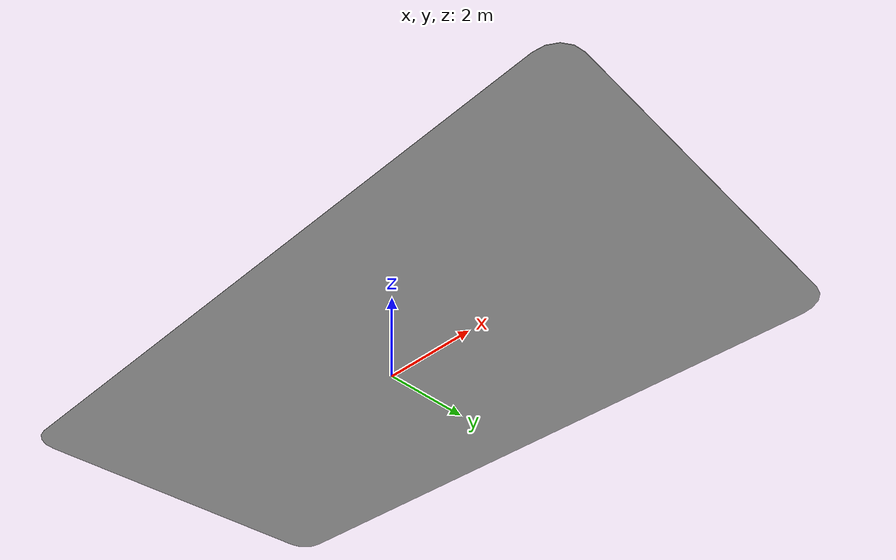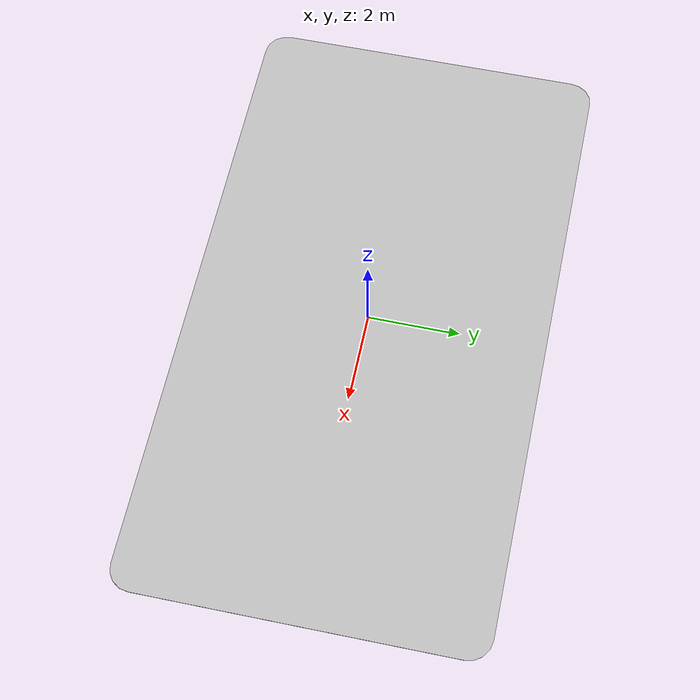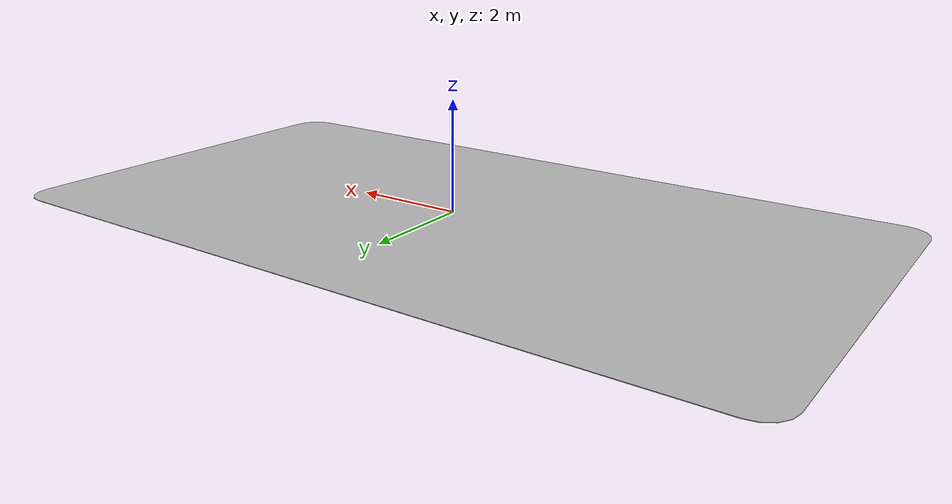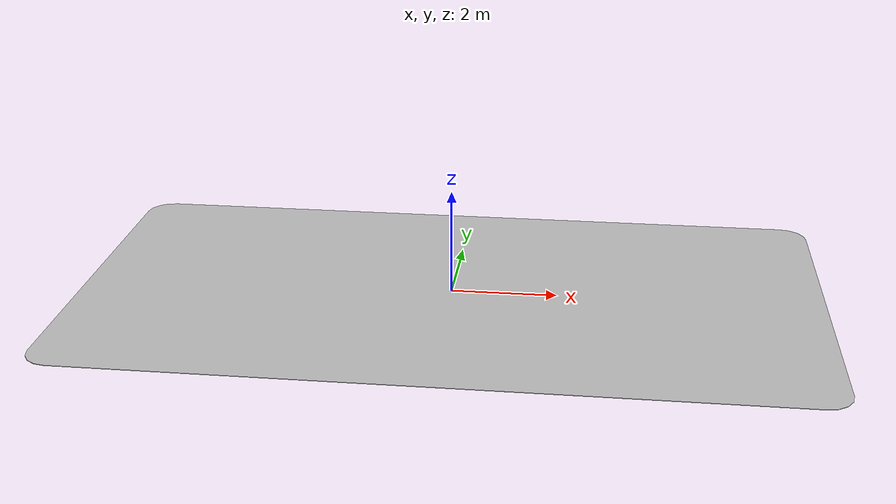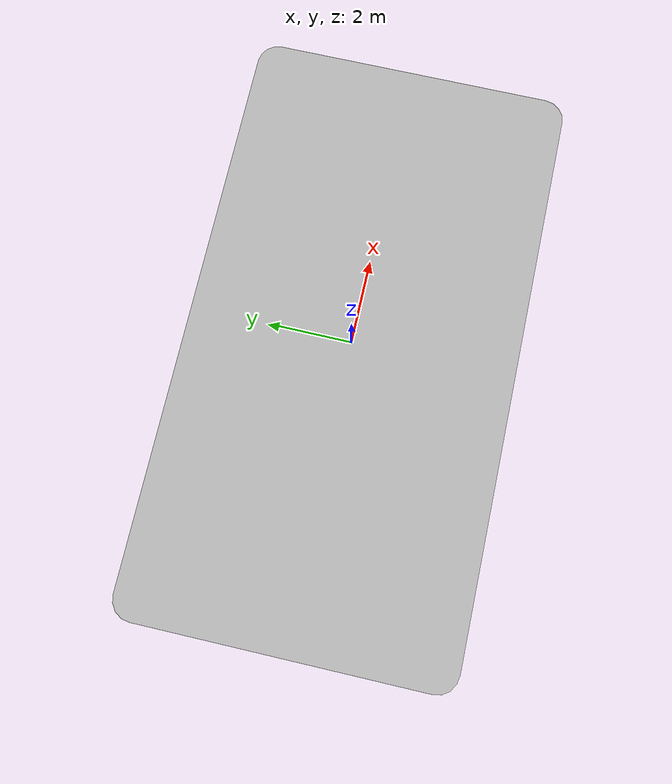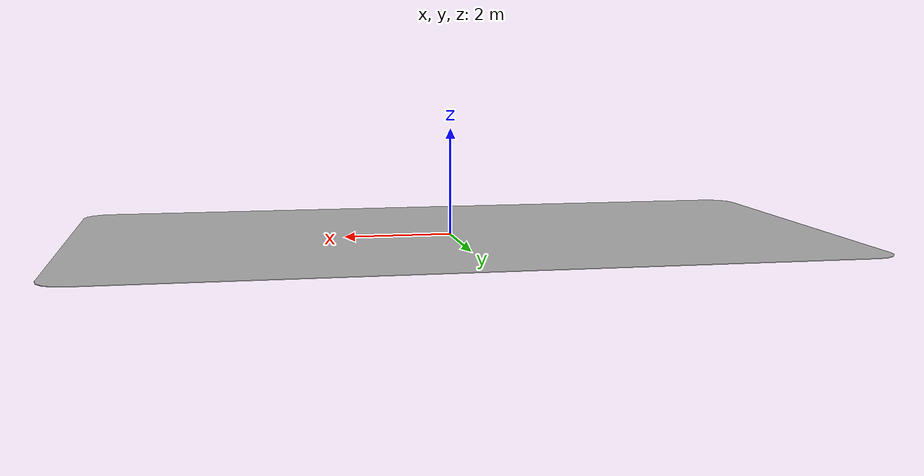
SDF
<?xml version="1.0" ?>
<sdf version="1.6">
  <model name="tianracer_racetrack">
    <static>true</static>
    <link name="link">
      <collision name="collision">
        <geometry>
          <mesh>
            <uri>model://tianracer_racetrack/meshes/base_link.dae</uri>
          </mesh>
        </geometry>
      </collision>
      <visual name="visual">
        <geometry>
          <mesh>
            <uri>model://tianracer_racetrack/meshes/base_link.dae</uri>
          </mesh>
        </geometry>
      </visual>
    </link>
  </model>
</sdf>
